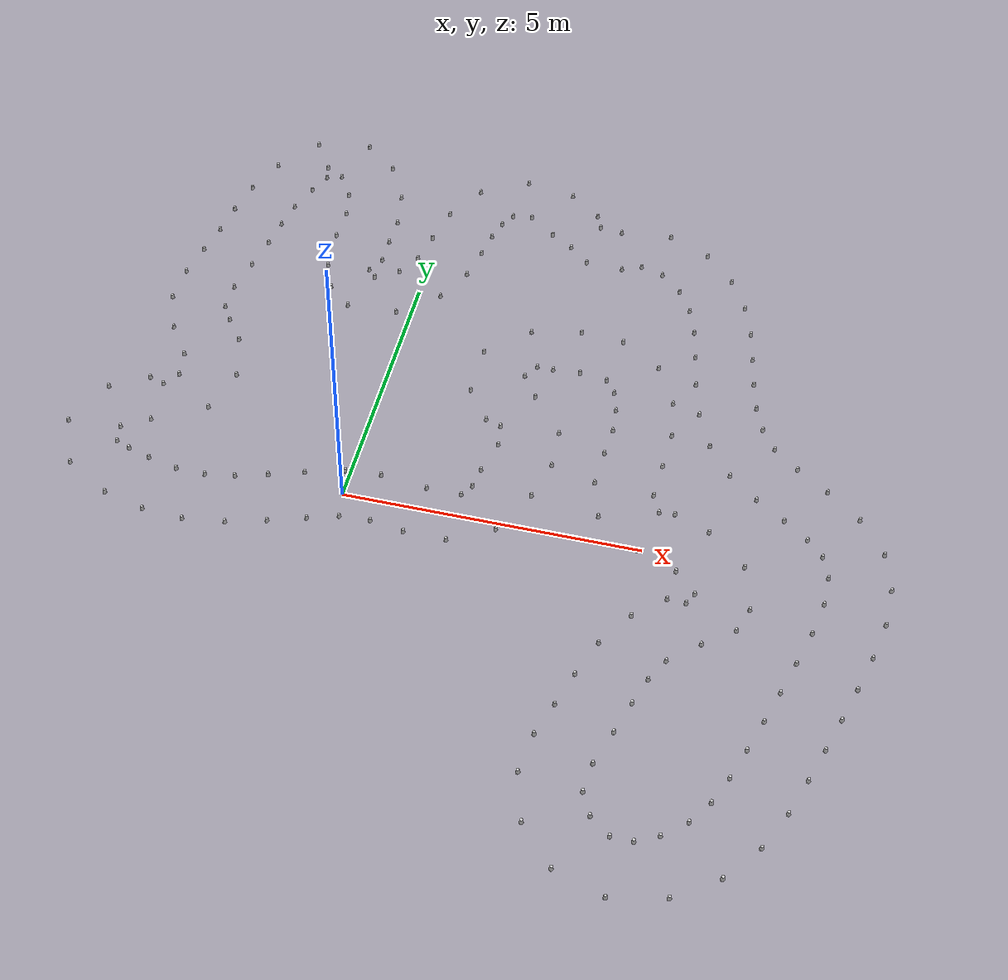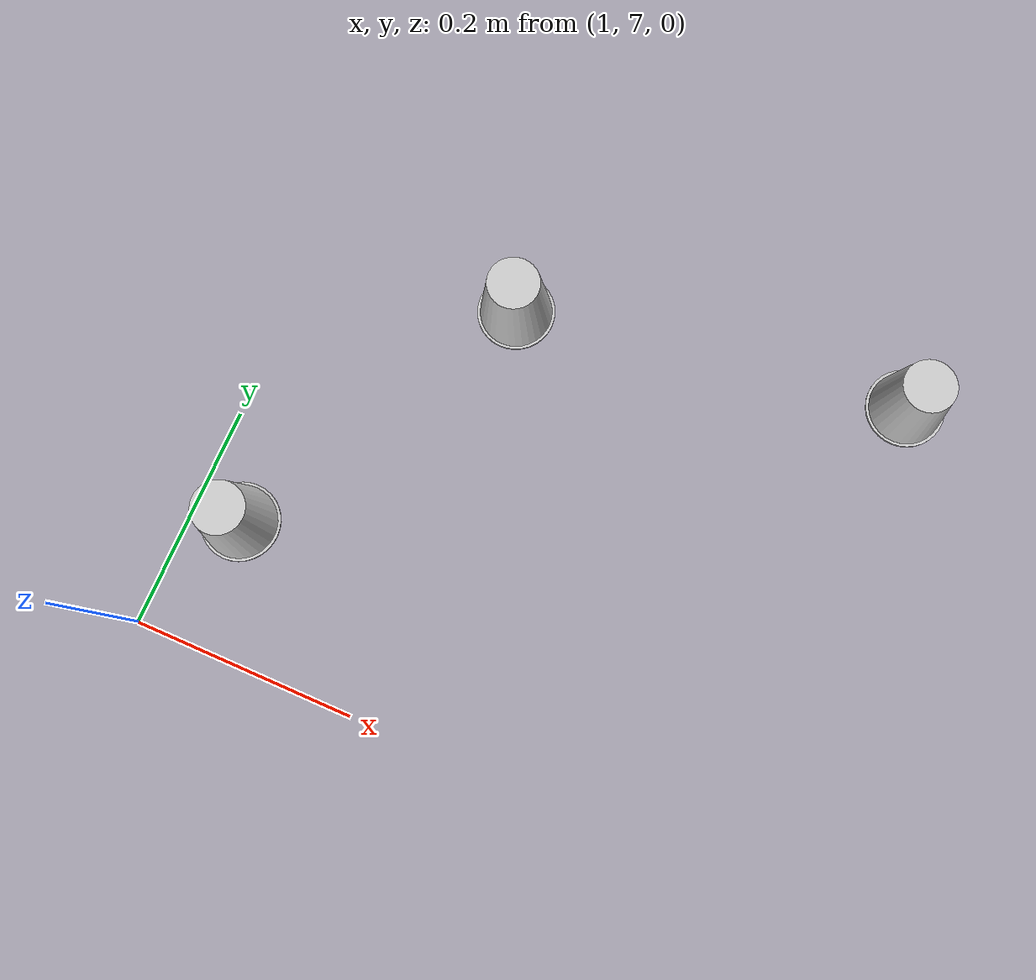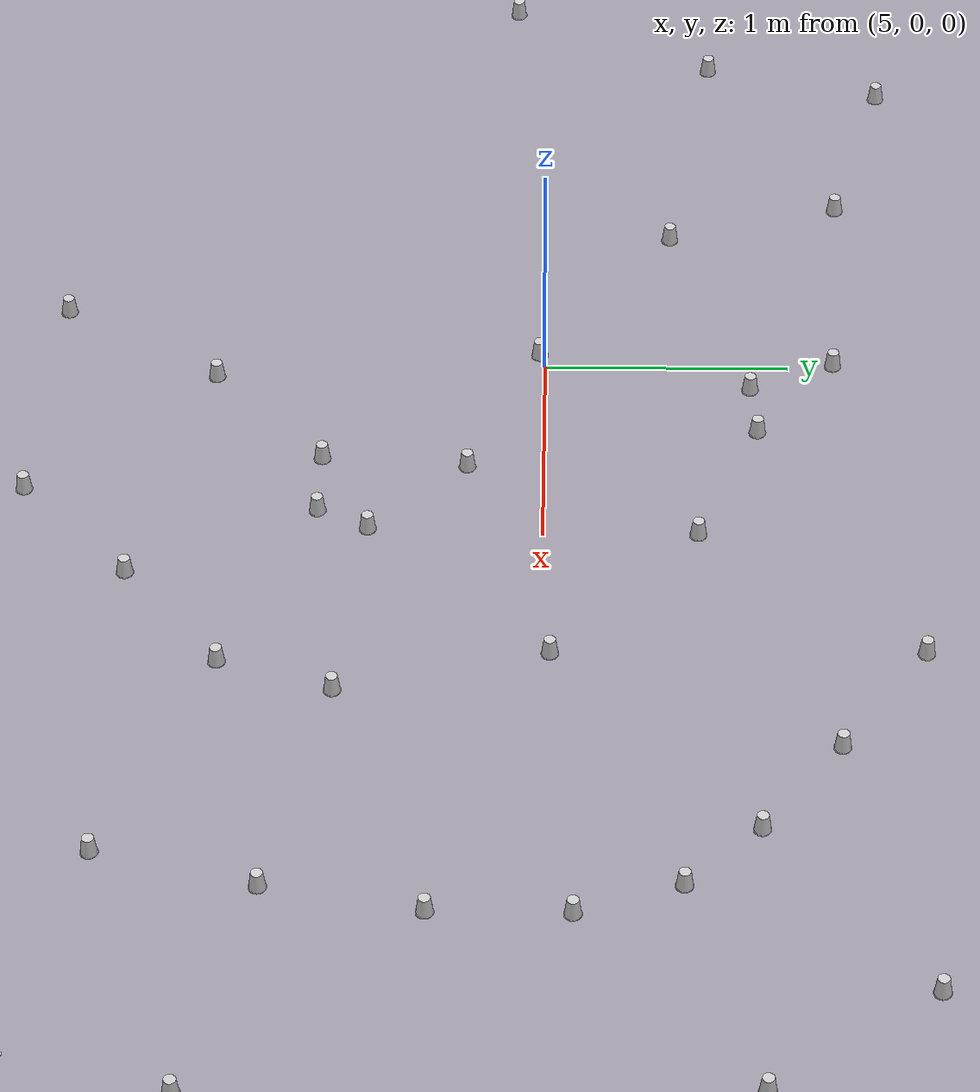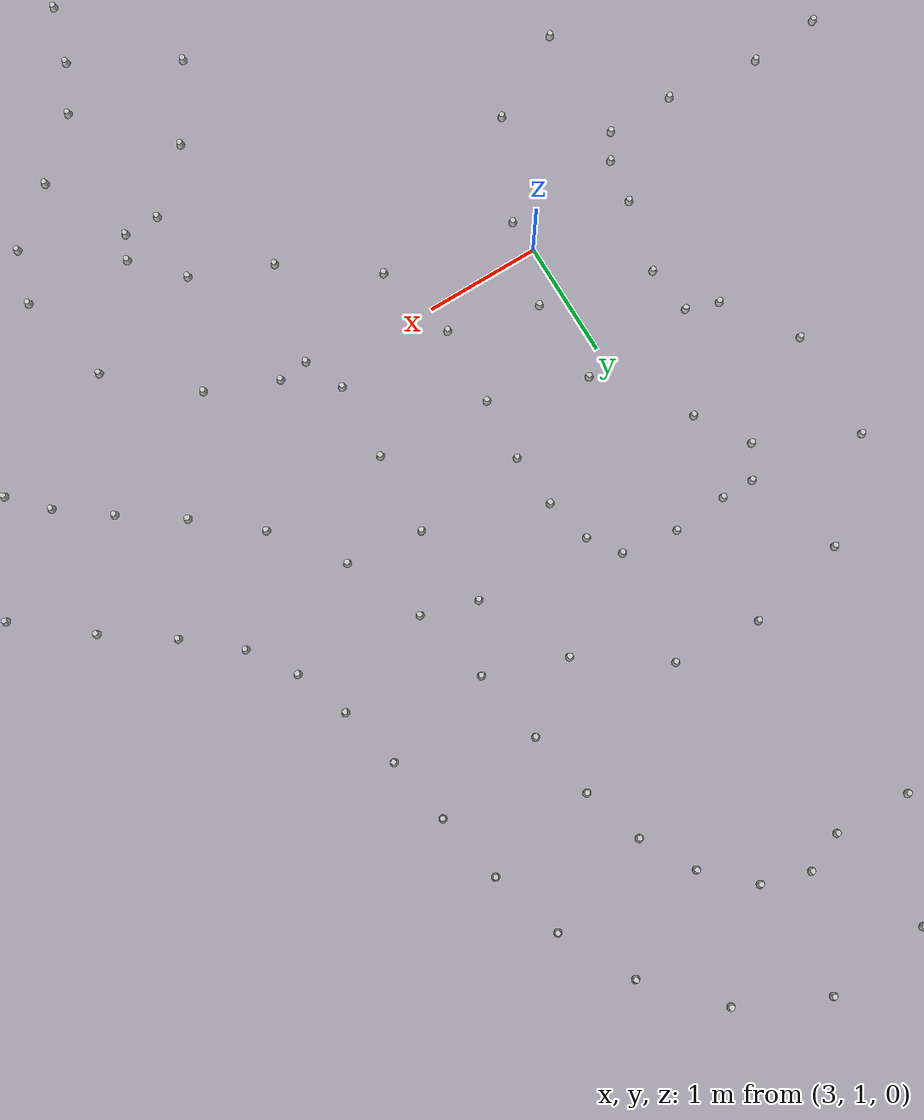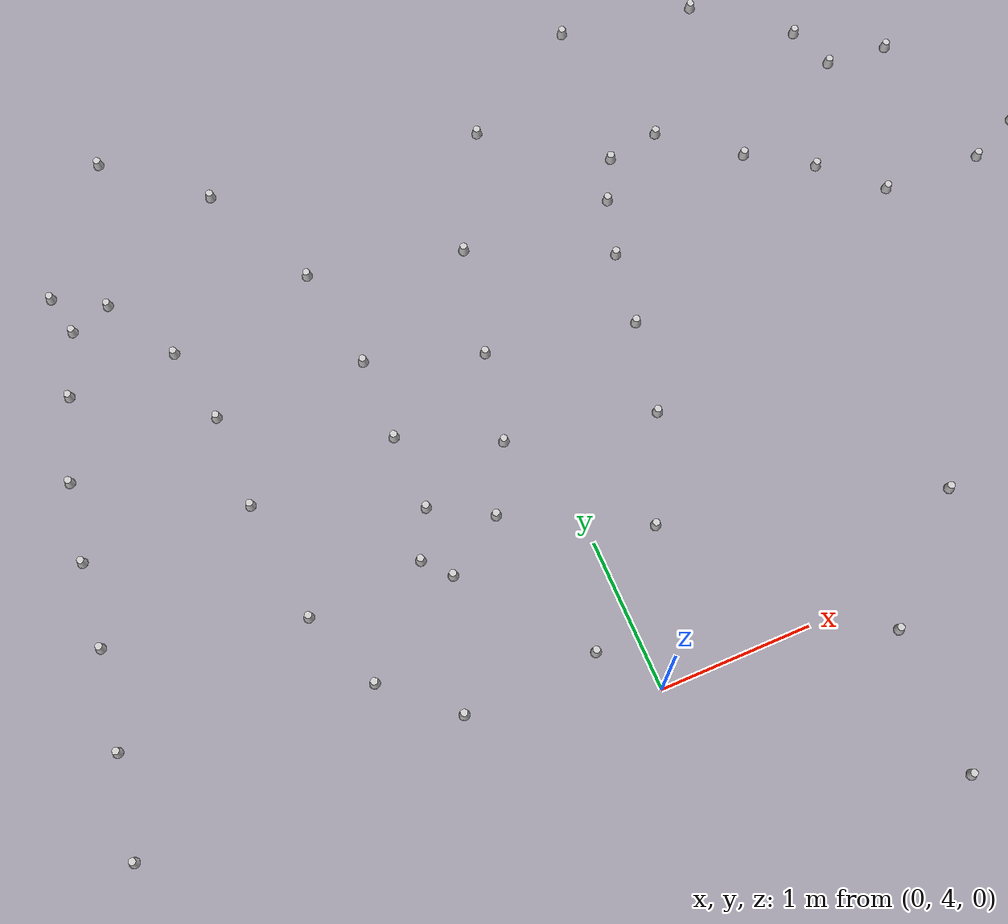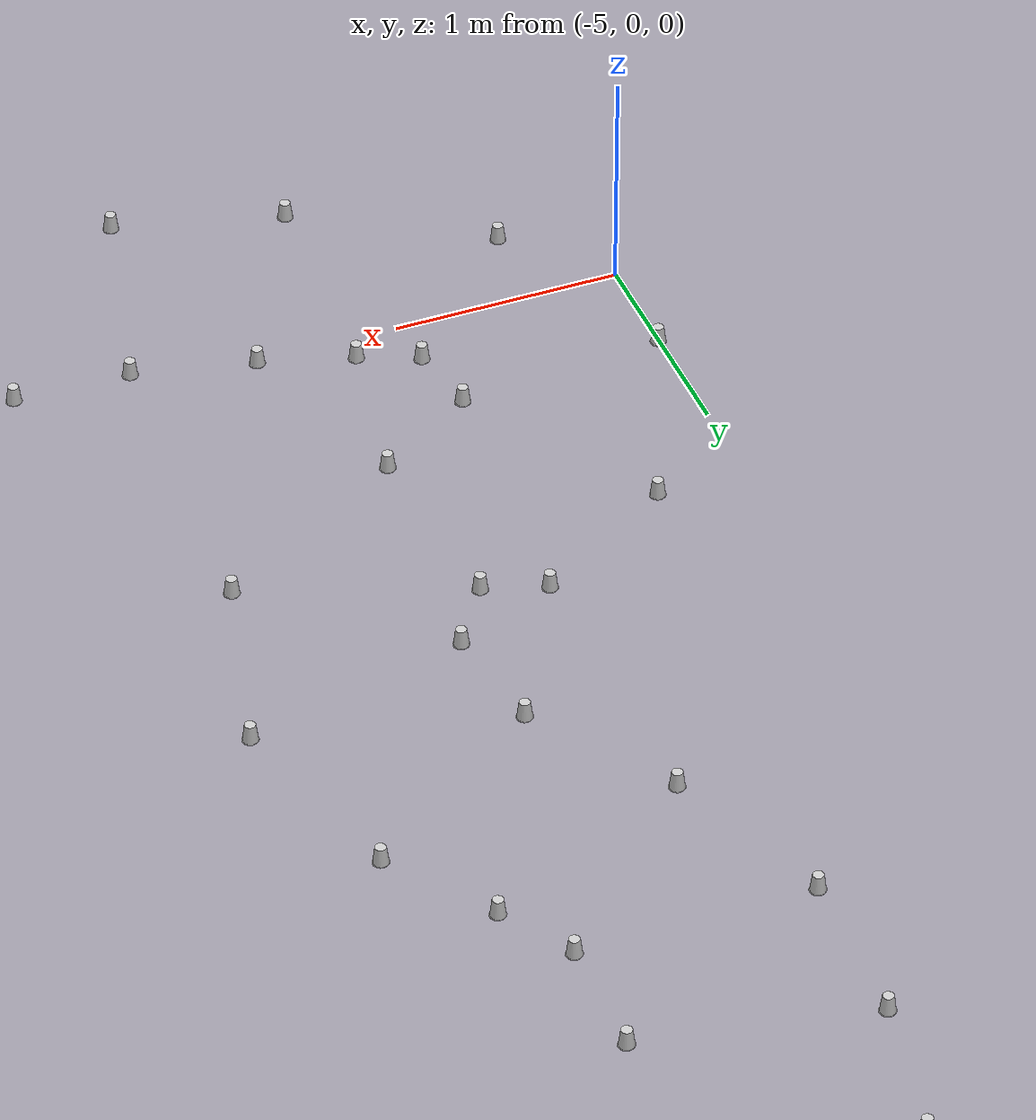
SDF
<?xml version='1.0' encoding='UTF-8'?>
<sdf version="1.4">
  <model name="some track">
    <include>
      <uri>model://cone_yellow</uri>
      <pose>0.5926240286676385 -0.4496644225206605 0 0 0 0</pose>
      <name>cone_right_0</name>
    </include>
    <include>
      <uri>model://cone_yellow</uri>
      <pose>1.1742139536098788 -0.5427977768245701 0 0 0 0</pose>
      <name>cone_right_1</name>
    </include>
    <include>
      <uri>model://cone_yellow</uri>
      <pose>1.8925440433021985 -0.5508184819998573 0 0 0 0</pose>
      <name>cone_right_2</name>
    </include>
    <include>
      <uri>model://cone_yellow</uri>
      <pose>2.621982230147129 -0.14147308389233232 0 0 0 0</pose>
      <name>cone_right_3</name>
    </include>
    <include>
      <uri>model://cone_yellow</uri>
      <pose>3.025602645867592 0.7014848524866597 0 0 0 0</pose>
      <name>cone_right_4</name>
    </include>
    <include>
      <uri>model://cone_yellow</uri>
      <pose>3.209663366661779 1.4351181551910275 0 0 0 0</pose>
      <name>cone_right_5</name>
    </include>
    <include>
      <uri>model://cone_yellow</uri>
      <pose>3.1764131237274524 2.176159549051108 0 0 0 0</pose>
      <name>cone_right_6</name>
    </include>
    <include>
      <uri>model://cone_yellow</uri>
      <pose>2.6049247107749287 2.9078729368130305 0 0 0 0</pose>
      <name>cone_right_7</name>
    </include>
    <include>
      <uri>model://cone_yellow</uri>
      <pose>2.3191245979793416 3.3552197150099548 0 0 0 0</pose>
      <name>cone_right_8</name>
    </include>
    <include>
      <uri>model://cone_yellow</uri>
      <pose>2.4833184282461827 3.6243186827966802 0 0 0 0</pose>
      <name>cone_right_9</name>
    </include>
    <include>
      <uri>model://cone_yellow</uri>
      <pose>2.7652926973428475 3.621423397846722 0 0 0 0</pose>
      <name>cone_right_10</name>
    </include>
    <include>
      <uri>model://cone_yellow</uri>
      <pose>3.2367796323696 3.6574391610812027 0 0 0 0</pose>
      <name>cone_right_11</name>
    </include>
    <include>
      <uri>model://cone_yellow</uri>
      <pose>3.7216663289902607 3.5875163788172473 0 0 0 0</pose>
      <name>cone_right_12</name>
    </include>
    <include>
      <uri>model://cone_yellow</uri>
      <pose>3.908267893891536 3.324950073920827 0 0 0 0</pose>
      <name>cone_right_13</name>
    </include>
    <include>
      <uri>model://cone_yellow</uri>
      <pose>4.01422726666874 2.9243217030171733 0 0 0 0</pose>
      <name>cone_right_14</name>
    </include>
    <include>
      <uri>model://cone_yellow</uri>
      <pose>4.049451164405825 2.4551077566956487 0 0 0 0</pose>
      <name>cone_right_15</name>
    </include>
    <include>
      <uri>model://cone_yellow</uri>
      <pose>4.011646672626873 1.910474725101548 0 0 0 0</pose>
      <name>cone_right_16</name>
    </include>
    <include>
      <uri>model://cone_yellow</uri>
      <pose>3.9823268985117064 1.227601969559943 0 0 0 0</pose>
      <name>cone_right_17</name>
    </include>
    <include>
      <uri>model://cone_yellow</uri>
      <pose>4.185422190930103 0.5213251038594172 0 0 0 0</pose>
      <name>cone_right_18</name>
    </include>
    <include>
      <uri>model://cone_yellow</uri>
      <pose>4.9300219559430545 -0.022289933660858352 0 0 0 0</pose>
      <name>cone_right_19</name>
    </include>
    <include>
      <uri>model://cone_yellow</uri>
      <pose>5.609639765720732 -0.3060220504106689 0 0 0 0</pose>
      <name>cone_right_20</name>
    </include>
    <include>
      <uri>model://cone_yellow</uri>
      <pose>5.975602284648303 -0.6934947396012945 0 0 0 0</pose>
      <name>cone_right_21</name>
    </include>
    <include>
      <uri>model://cone_yellow</uri>
      <pose>5.873674673358433 -0.8973140764588212 0 0 0 0</pose>
      <name>cone_right_22</name>
    </include>
    <include>
      <uri>model://cone_yellow</uri>
      <pose>5.569832798714895 -0.891734108104277 0 0 0 0</pose>
      <name>cone_right_23</name>
    </include>
    <include>
      <uri>model://cone_yellow</uri>
      <pose>5.082426211543387 -1.3467647407133472 0 0 0 0</pose>
      <name>cone_right_24</name>
    </include>
    <include>
      <uri>model://cone_yellow</uri>
      <pose>4.6886741754362955 -1.9881683167215598 0 0 0 0</pose>
      <name>cone_right_25</name>
    </include>
    <include>
      <uri>model://cone_yellow</uri>
      <pose>4.453444475412172 -2.652746987878084 0 0 0 0</pose>
      <name>cone_right_26</name>
    </include>
    <include>
      <uri>model://cone_yellow</uri>
      <pose>4.271136906800132 -3.2735911860420464 0 0 0 0</pose>
      <name>cone_right_27</name>
    </include>
    <include>
      <uri>model://cone_yellow</uri>
      <pose>4.083276239001537 -3.868869079284106 0 0 0 0</pose>
      <name>cone_right_28</name>
    </include>
    <include>
      <uri>model://cone_yellow</uri>
      <pose>3.9968853151914643 -4.572186869420193 0 0 0 0</pose>
      <name>cone_right_29</name>
    </include>
    <include>
      <uri>model://cone_yellow</uri>
      <pose>4.232486991013055 -5.3884951293811545 0 0 0 0</pose>
      <name>cone_right_30</name>
    </include>
    <include>
      <uri>model://cone_yellow</uri>
      <pose>4.810995842386667 -6.031311726222032 0 0 0 0</pose>
      <name>cone_right_31</name>
    </include>
    <include>
      <uri>model://cone_yellow</uri>
      <pose>5.6438158314488955 -6.298380192286762 0 0 0 0</pose>
      <name>cone_right_32</name>
    </include>
    <include>
      <uri>model://cone_yellow</uri>
      <pose>6.516503475589494 -6.096646586173083 0 0 0 0</pose>
      <name>cone_right_33</name>
    </include>
    <include>
      <uri>model://cone_yellow</uri>
      <pose>7.1923332381018925 -5.6146948798992335 0 0 0 0</pose>
      <name>cone_right_34</name>
    </include>
    <include>
      <uri>model://cone_yellow</uri>
      <pose>7.655904713150752 -4.997277309711297 0 0 0 0</pose>
      <name>cone_right_35</name>
    </include>
    <include>
      <uri>model://cone_yellow</uri>
      <pose>7.952323891597003 -4.338363079962488 0 0 0 0</pose>
      <name>cone_right_36</name>
    </include>
    <include>
      <uri>model://cone_yellow</uri>
      <pose>8.159773566467715 -3.7115101008862474 0 0 0 0</pose>
      <name>cone_right_37</name>
    </include>
    <include>
      <uri>model://cone_yellow</uri>
      <pose>8.338978254992796 -3.122865698999707 0 0 0 0</pose>
      <name>cone_right_38</name>
    </include>
    <include>
      <uri>model://cone_yellow</uri>
      <pose>8.509608703077793 -2.530558452051303 0 0 0 0</pose>
      <name>cone_right_39</name>
    </include>
    <include>
      <uri>model://cone_yellow</uri>
      <pose>8.677481224212881 -1.9178279676206345 0 0 0 0</pose>
      <name>cone_right_40</name>
    </include>
    <include>
      <uri>model://cone_yellow</uri>
      <pose>8.843436142594843 -1.2712515679855898 0 0 0 0</pose>
      <name>cone_right_41</name>
    </include>
    <include>
      <uri>model://cone_yellow</uri>
      <pose>8.9701087025158 -0.5876858298561805 0 0 0 0</pose>
      <name>cone_right_42</name>
    </include>
    <include>
      <uri>model://cone_yellow</uri>
      <pose>8.988571988894483 0.11657539057124149 0 0 0 0</pose>
      <name>cone_right_43</name>
    </include>
    <include>
      <uri>model://cone_yellow</uri>
      <pose>8.805590077495555 0.8221350772742814 0 0 0 0</pose>
      <name>cone_right_44</name>
    </include>
    <include>
      <uri>model://cone_yellow</uri>
      <pose>8.342622471358137 1.459353696476083 0 0 0 0</pose>
      <name>cone_right_45</name>
    </include>
    <include>
      <uri>model://cone_yellow</uri>
      <pose>7.758009836726797 1.9338725175860367 0 0 0 0</pose>
      <name>cone_right_46</name>
    </include>
    <include>
      <uri>model://cone_yellow</uri>
      <pose>7.2073115639049075 2.313196113411687 0 0 0 0</pose>
      <name>cone_right_47</name>
    </include>
    <include>
      <uri>model://cone_yellow</uri>
      <pose>6.7782843593962365 2.67530117761143 0 0 0 0</pose>
      <name>cone_right_48</name>
    </include>
    <include>
      <uri>model://cone_yellow</uri>
      <pose>6.51725434777347 3.069160972971799 0 0 0 0</pose>
      <name>cone_right_49</name>
    </include>
    <include>
      <uri>model://cone_yellow</uri>
      <pose>6.342785515885337 3.5410416892903047 0 0 0 0</pose>
      <name>cone_right_50</name>
    </include>
    <include>
      <uri>model://cone_yellow</uri>
      <pose>6.212617466763378 4.093869825266669 0 0 0 0</pose>
      <name>cone_right_51</name>
    </include>
    <include>
      <uri>model://cone_yellow</uri>
      <pose>6.107851373185473 4.687389482358288 0 0 0 0</pose>
      <name>cone_right_52</name>
    </include>
    <include>
      <uri>model://cone_yellow</uri>
      <pose>5.985255542184531 5.306769562227877 0 0 0 0</pose>
      <name>cone_right_53</name>
    </include>
    <include>
      <uri>model://cone_yellow</uri>
      <pose>5.787892635115244 5.942779217780199 0 0 0 0</pose>
      <name>cone_right_54</name>
    </include>
    <include>
      <uri>model://cone_yellow</uri>
      <pose>5.448540965672963 6.577457392597124 0 0 0 0</pose>
      <name>cone_right_55</name>
    </include>
    <include>
      <uri>model://cone_yellow</uri>
      <pose>4.91262792865898 7.15415810240139 0 0 0 0</pose>
      <name>cone_right_56</name>
    </include>
    <include>
      <uri>model://cone_yellow</uri>
      <pose>4.168831951117055 7.506775254272088 0 0 0 0</pose>
      <name>cone_right_57</name>
    </include>
    <include>
      <uri>model://cone_yellow</uri>
      <pose>3.257854512022687 7.415196068914482 0 0 0 0</pose>
      <name>cone_right_58</name>
    </include>
    <include>
      <uri>model://cone_yellow</uri>
      <pose>2.848028742278011 7.457584233564593 0 0 0 0</pose>
      <name>cone_right_59</name>
    </include>
    <include>
      <uri>model://cone_yellow</uri>
      <pose>2.7333074841598743 7.758220329443013 0 0 0 0</pose>
      <name>cone_right_60</name>
    </include>
    <include>
      <uri>model://cone_yellow</uri>
      <pose>2.163430488230667 8.218145151686327 0 0 0 0</pose>
      <name>cone_right_61</name>
    </include>
    <include>
      <uri>model://cone_yellow</uri>
      <pose>1.2725276612249197 8.37906739706495 0 0 0 0</pose>
      <name>cone_right_62</name>
    </include>
    <include>
      <uri>model://cone_yellow</uri>
      <pose>0.44026859662325746 7.911447135812434 0 0 0 0</pose>
      <name>cone_right_63</name>
    </include>
    <include>
      <uri>model://cone_yellow</uri>
      <pose>0.025568352249274673 7.158063629582086 0 0 0 0</pose>
      <name>cone_right_64</name>
    </include>
    <include>
      <uri>model://cone_yellow</uri>
      <pose>-0.1288647231304486 6.435672528760919 0 0 0 0</pose>
      <name>cone_right_65</name>
    </include>
    <include>
      <uri>model://cone_yellow</uri>
      <pose>-0.2549660988100891 5.838572945383033 0 0 0 0</pose>
      <name>cone_right_66</name>
    </include>
    <include>
      <uri>model://cone_yellow</uri>
      <pose>-0.49247083079778997 5.408630319975282 0 0 0 0</pose>
      <name>cone_right_67</name>
    </include>
    <include>
      <uri>model://cone_yellow</uri>
      <pose>-0.8894368720874655 5.157979234895482 0 0 0 0</pose>
      <name>cone_right_68</name>
    </include>
    <include>
      <uri>model://cone_yellow</uri>
      <pose>-1.038061143772976 5.3255489095402995 0 0 0 0</pose>
      <name>cone_right_69</name>
    </include>
    <include>
      <uri>model://cone_yellow</uri>
      <pose>-0.8761949920071117 5.629144206848843 0 0 0 0</pose>
      <name>cone_right_70</name>
    </include>
    <include>
      <uri>model://cone_yellow</uri>
      <pose>-0.8848568909940436 6.140193762231009 0 0 0 0</pose>
      <name>cone_right_71</name>
    </include>
    <include>
      <uri>model://cone_yellow</uri>
      <pose>-0.8740308544750517 6.692349803740463 0 0 0 0</pose>
      <name>cone_right_72</name>
    </include>
    <include>
      <uri>model://cone_yellow</uri>
      <pose>-0.9865156868503095 7.395680946636413 0 0 0 0</pose>
      <name>cone_right_73</name>
    </include>
    <include>
      <uri>model://cone_yellow</uri>
      <pose>-1.3688440059523004 8.17624231659473 0 0 0 0</pose>
      <name>cone_right_74</name>
    </include>
    <include>
      <uri>model://cone_yellow</uri>
      <pose>-1.9737362222657047 8.695579620017877 0 0 0 0</pose>
      <name>cone_right_75</name>
    </include>
    <include>
      <uri>model://cone_yellow</uri>
      <pose>-2.953929525343332 8.529521124077906 0 0 0 0</pose>
      <name>cone_right_76</name>
    </include>
    <include>
      <uri>model://cone_yellow</uri>
      <pose>-3.5389007654043616 7.741510338627647 0 0 0 0</pose>
      <name>cone_right_77</name>
    </include>
    <include>
      <uri>model://cone_yellow</uri>
      <pose>-3.816207857613418 7.006306770506495 0 0 0 0</pose>
      <name>cone_right_78</name>
    </include>
    <include>
      <uri>model://cone_yellow</uri>
      <pose>-3.954686946718662 6.340619207608372 0 0 0 0</pose>
      <name>cone_right_79</name>
    </include>
    <include>
      <uri>model://cone_yellow</uri>
      <pose>-4.039722539668558 5.7236343874897315 0 0 0 0</pose>
      <name>cone_right_80</name>
    </include>
    <include>
      <uri>model://cone_yellow</uri>
      <pose>-4.149355277572595 5.127473580053615 0 0 0 0</pose>
      <name>cone_right_81</name>
    </include>
    <include>
      <uri>model://cone_yellow</uri>
      <pose>-4.274423898647589 4.4889016552255425 0 0 0 0</pose>
      <name>cone_right_82</name>
    </include>
    <include>
      <uri>model://cone_yellow</uri>
      <pose>-4.2920744478689254 3.7890751750333456 0 0 0 0</pose>
      <name>cone_right_83</name>
    </include>
    <include>
      <uri>model://cone_yellow</uri>
      <pose>-4.012419427273055 3.056052473731364 0 0 0 0</pose>
      <name>cone_right_84</name>
    </include>
    <include>
      <uri>model://cone_yellow</uri>
      <pose>-3.608962209834163 2.4612220995014553 0 0 0 0</pose>
      <name>cone_right_85</name>
    </include>
    <include>
      <uri>model://cone_yellow</uri>
      <pose>-3.5323989559630324 1.966525755428469 0 0 0 0</pose>
      <name>cone_right_86</name>
    </include>
    <include>
      <uri>model://cone_yellow</uri>
      <pose>-3.7219395392399095 1.6868194550546387 0 0 0 0</pose>
      <name>cone_right_87</name>
    </include>
    <include>
      <uri>model://cone_yellow</uri>
      <pose>-3.988937196147224 1.7765033941357187 0 0 0 0</pose>
      <name>cone_right_88</name>
    </include>
    <include>
      <uri>model://cone_yellow</uri>
      <pose>-4.613894258859372 1.400461778271594 0 0 0 0</pose>
      <name>cone_right_89</name>
    </include>
    <include>
      <uri>model://cone_yellow</uri>
      <pose>-4.995886600944408 0.47890372462951136 0 0 0 0</pose>
      <name>cone_right_90</name>
    </include>
    <include>
      <uri>model://cone_yellow</uri>
      <pose>-4.620396712499105 -0.4125756290382736 0 0 0 0</pose>
      <name>cone_right_91</name>
    </include>
    <include>
      <uri>model://cone_yellow</uri>
      <pose>-3.8256826218725304 -0.8928227698400282 0 0 0 0</pose>
      <name>cone_right_92</name>
    </include>
    <include>
      <uri>model://cone_yellow</uri>
      <pose>-3.1013015315406216 -1.0893334316105001 0 0 0 0</pose>
      <name>cone_right_93</name>
    </include>
    <include>
      <uri>model://cone_yellow</uri>
      <pose>-2.3993373413608214 -1.134670515380645 0 0 0 0</pose>
      <name>cone_right_94</name>
    </include>
    <include>
      <uri>model://cone_yellow</uri>
      <pose>-1.6998606974034003 -1.0372482435559367 0 0 0 0</pose>
      <name>cone_right_95</name>
    </include>
    <include>
      <uri>model://cone_yellow</uri>
      <pose>-1.0393641356502785 -0.8479018840486419 0 0 0 0</pose>
      <name>cone_right_96</name>
    </include>
    <include>
      <uri>model://cone_yellow</uri>
      <pose>-0.42769522994100817 -0.6416128295186374 0 0 0 0</pose>
      <name>cone_right_97</name>
    </include>
    <include>
      <uri>model://cone_yellow</uri>
      <pose>0.07523493147859028 -0.48153602104993354 0 0 0 0</pose>
      <name>cone_right_98</name>
    </include>
    <include>
      <uri>model://cone_blue</uri>
      <pose>0.5047521691076726 0.5464673640906661 0 0 0 0</pose>
      <name>cone_left_0</name>
    </include>
    <include>
      <uri>model://cone_blue</uri>
      <pose>1.3111118919254319 0.4477873807893279 0 0 0 0</pose>
      <name>cone_left_1</name>
    </include>
    <include>
      <uri>model://cone_blue</uri>
      <pose>1.8976323099558587 0.4491685726875828 0 0 0 0</pose>
      <name>cone_left_2</name>
    </include>
    <include>
      <uri>model://cone_blue</uri>
      <pose>2.0350946812627466 0.6681953698370207 0 0 0 0</pose>
      <name>cone_left_3</name>
    </include>
    <include>
      <uri>model://cone_blue</uri>
      <pose>2.088655890659815 1.0509569943028816 0 0 0 0</pose>
      <name>cone_left_4</name>
    </include>
    <include>
      <uri>model://cone_blue</uri>
      <pose>2.2386598585117534 1.6741833913930801 0 0 0 0</pose>
      <name>cone_left_5</name>
    </include>
    <include>
      <uri>model://cone_blue</uri>
      <pose>2.17954700538655 2.0970523932183838 0 0 0 0</pose>
      <name>cone_left_6</name>
    </include>
    <include>
      <uri>model://cone_blue</uri>
      <pose>1.9053398211729058 2.193323440808362 0 0 0 0</pose>
      <name>cone_left_7</name>
    </include>
    <include>
      <uri>model://cone_blue</uri>
      <pose>1.4874520828144282 2.7999532676900514 0 0 0 0</pose>
      <name>cone_left_8</name>
    </include>
    <include>
      <uri>model://cone_blue</uri>
      <pose>1.4926722242813686 3.760774164804932 0 0 0 0</pose>
      <name>cone_left_9</name>
    </include>
    <include>
      <uri>model://cone_blue</uri>
      <pose>2.197349257371956 4.444490982552881 0 0 0 0</pose>
      <name>cone_left_10</name>
    </include>
    <include>
      <uri>model://cone_blue</uri>
      <pose>3.0645774930551455 4.642500795302902 0 0 0 0</pose>
      <name>cone_left_11</name>
    </include>
    <include>
      <uri>model://cone_blue</uri>
      <pose>3.8256994388163603 4.582090213210607 0 0 0 0</pose>
      <name>cone_left_12</name>
    </include>
    <include>
      <uri>model://cone_blue</uri>
      <pose>4.545284538835137 4.095800120340232 0 0 0 0</pose>
      <name>cone_left_13</name>
    </include>
    <include>
      <uri>model://cone_blue</uri>
      <pose>4.9364212054654555 3.311049435726636 0 0 0 0</pose>
      <name>cone_left_14</name>
    </include>
    <include>
      <uri>model://cone_blue</uri>
      <pose>5.042673119311184 2.5713409201817172 0 0 0 0</pose>
      <name>cone_left_15</name>
    </include>
    <include>
      <uri>model://cone_blue</uri>
      <pose>5.010093105665535 1.8547547075820665 0 0 0 0</pose>
      <name>cone_left_16</name>
    </include>
    <include>
      <uri>model://cone_blue</uri>
      <pose>4.981409033262212 1.184766376621667 0 0 0 0</pose>
      <name>cone_left_17</name>
    </include>
    <include>
      <uri>model://cone_blue</uri>
      <pose>5.132847144087052 0.8413031626940094 0 0 0 0</pose>
      <name>cone_left_18</name>
    </include>
    <include>
      <uri>model://cone_blue</uri>
      <pose>5.390234710733218 0.8655187283426438 0 0 0 0</pose>
      <name>cone_left_19</name>
    </include>
    <include>
      <uri>model://cone_blue</uri>
      <pose>5.992626565200983 0.6177317649664981 0 0 0 0</pose>
      <name>cone_left_20</name>
    </include>
    <include>
      <uri>model://cone_blue</uri>
      <pose>6.659858036780512 0.035747377719136664 0 0 0 0</pose>
      <name>cone_left_21</name>
    </include>
    <include>
      <uri>model://cone_blue</uri>
      <pose>6.868404087036007 -0.7947792357232388 0 0 0 0</pose>
      <name>cone_left_22</name>
    </include>
    <include>
      <uri>model://cone_blue</uri>
      <pose>6.236399348606454 -1.6371796356686068 0 0 0 0</pose>
      <name>cone_left_23</name>
    </include>
    <include>
      <uri>model://cone_blue</uri>
      <pose>5.764967217045308 -2.0776120406388685 0 0 0 0</pose>
      <name>cone_left_24</name>
    </include>
    <include>
      <uri>model://cone_blue</uri>
      <pose>5.55588685814992 -2.4861062274500343 0 0 0 0</pose>
      <name>cone_left_25</name>
    </include>
    <include>
      <uri>model://cone_blue</uri>
      <pose>5.400507848419708 -2.97379366284543 0 0 0 0</pose>
      <name>cone_left_26</name>
    </include>
    <include>
      <uri>model://cone_blue</uri>
      <pose>5.230816005721868 -3.554689081965803 0 0 0 0</pose>
      <name>cone_left_27</name>
    </include>
    <include>
      <uri>model://cone_blue</uri>
      <pose>5.036965989448745 -4.169661133520824 0 0 0 0</pose>
      <name>cone_left_28</name>
    </include>
    <include>
      <uri>model://cone_blue</uri>
      <pose>4.990996199372505 -4.680554530430241 0 0 0 0</pose>
      <name>cone_left_29</name>
    </include>
    <include>
      <uri>model://cone_blue</uri>
      <pose>5.175581968386841 -5.0559716510336274 0 0 0 0</pose>
      <name>cone_left_30</name>
    </include>
    <include>
      <uri>model://cone_blue</uri>
      <pose>5.514232296184085 -5.320355686757965 0 0 0 0</pose>
      <name>cone_left_31</name>
    </include>
    <include>
      <uri>model://cone_blue</uri>
      <pose>5.8661128955254505 -5.323401210306667 0 0 0 0</pose>
      <name>cone_left_32</name>
    </include>
    <include>
      <uri>model://cone_blue</uri>
      <pose>6.21807428203332 -5.142214809442336 0 0 0 0</pose>
      <name>cone_left_33</name>
    </include>
    <include>
      <uri>model://cone_blue</uri>
      <pose>6.5817593105280965 -4.822735613922057 0 0 0 0</pose>
      <name>cone_left_34</name>
    </include>
    <include>
      <uri>model://cone_blue</uri>
      <pose>6.839337002959384 -4.420027645637921 0 0 0 0</pose>
      <name>cone_left_35</name>
    </include>
    <include>
      <uri>model://cone_blue</uri>
      <pose>7.034367352579388 -3.9416821093137804 0 0 0 0</pose>
      <name>cone_left_36</name>
    </include>
    <include>
      <uri>model://cone_blue</uri>
      <pose>7.2094205191617675 -3.400336378544047 0 0 0 0</pose>
      <name>cone_left_37</name>
    </include>
    <include>
      <uri>model://cone_blue</uri>
      <pose>7.3822753403375865 -2.8317994984709856 0 0 0 0</pose>
      <name>cone_left_38</name>
    </include>
    <include>
      <uri>model://cone_blue</uri>
      <pose>7.548661839099905 -2.253825503866481 0 0 0 0</pose>
      <name>cone_left_39</name>
    </include>
    <include>
      <uri>model://cone_blue</uri>
      <pose>7.713005703393521 -1.653655732629477 0 0 0 0</pose>
      <name>cone_left_40</name>
    </include>
    <include>
      <uri>model://cone_blue</uri>
      <pose>7.87480773934383 -1.0227379538406212 0 0 0 0</pose>
      <name>cone_left_41</name>
    </include>
    <include>
      <uri>model://cone_blue</uri>
      <pose>7.986532633692425 -0.407191738989035 0 0 0 0</pose>
      <name>cone_left_42</name>
    </include>
    <include>
      <uri>model://cone_blue</uri>
      <pose>7.9887094685952444 0.13315672045923183 0 0 0 0</pose>
      <name>cone_left_43</name>
    </include>
    <include>
      <uri>model://cone_blue</uri>
      <pose>7.8458283962128945 0.5413192744043592 0 0 0 0</pose>
      <name>cone_left_44</name>
    </include>
    <include>
      <uri>model://cone_blue</uri>
      <pose>7.562816716897757 0.8333321430847651 0 0 0 0</pose>
      <name>cone_left_45</name>
    </include>
    <include>
      <uri>model://cone_blue</uri>
      <pose>7.141476895021921 1.146543404830302 0 0 0 0</pose>
      <name>cone_left_46</name>
    </include>
    <include>
      <uri>model://cone_blue</uri>
      <pose>6.641261014161778 1.4888255807411532 0 0 0 0</pose>
      <name>cone_left_47</name>
    </include>
    <include>
      <uri>model://cone_blue</uri>
      <pose>6.13638665790554 1.9085108928392773 0 0 0 0</pose>
      <name>cone_left_48</name>
    </include>
    <include>
      <uri>model://cone_blue</uri>
      <pose>5.703007669430681 2.4886419407189915 0 0 0 0</pose>
      <name>cone_left_49</name>
    </include>
    <include>
      <uri>model://cone_blue</uri>
      <pose>5.414868555149457 3.1682547340750133 0 0 0 0</pose>
      <name>cone_left_50</name>
    </include>
    <include>
      <uri>model://cone_blue</uri>
      <pose>5.241302482419599 3.856073271066988 0 0 0 0</pose>
      <name>cone_left_51</name>
    </include>
    <include>
      <uri>model://cone_blue</uri>
      <pose>5.123369426806524 4.511903593313283 0 0 0 0</pose>
      <name>cone_left_52</name>
    </include>
    <include>
      <uri>model://cone_blue</uri>
      <pose>5.004315104752118 5.112460894871249 0 0 0 0</pose>
      <name>cone_left_53</name>
    </include>
    <include>
      <uri>model://cone_blue</uri>
      <pose>4.834171710902287 5.6420860207863495 0 0 0 0</pose>
      <name>cone_left_54</name>
    </include>
    <include>
      <uri>model://cone_blue</uri>
      <pose>4.573253460538366 6.093854473504143 0 0 0 0</pose>
      <name>cone_left_55</name>
    </include>
    <include>
      <uri>model://cone_blue</uri>
      <pose>4.195524958359648 6.457190865016535 0 0 0 0</pose>
      <name>cone_left_56</name>
    </include>
    <include>
      <uri>model://cone_blue</uri>
      <pose>3.785695804470727 6.583083372131186 0 0 0 0</pose>
      <name>cone_left_57</name>
    </include>
    <include>
      <uri>model://cone_blue</uri>
      <pose>3.4475306713256404 6.433349362655261 0 0 0 0</pose>
      <name>cone_left_58</name>
    </include>
    <include>
      <uri>model://cone_blue</uri>
      <pose>2.784177790977494 6.459624787485736 0 0 0 0</pose>
      <name>cone_left_59</name>
    </include>
    <include>
      <uri>model://cone_blue</uri>
      <pose>2.0184940924232664 7.058905082223273 0 0 0 0</pose>
      <name>cone_left_60</name>
    </include>
    <include>
      <uri>model://cone_blue</uri>
      <pose>1.539376982326372 7.436763540840155 0 0 0 0</pose>
      <name>cone_left_61</name>
    </include>
    <include>
      <uri>model://cone_blue</uri>
      <pose>1.1868692061395933 7.382742836957957 0 0 0 0</pose>
      <name>cone_left_62</name>
    </include>
    <include>
      <uri>model://cone_blue</uri>
      <pose>1.0427586292553706 7.113320729421218 0 0 0 0</pose>
      <name>cone_left_63</name>
    </include>
    <include>
      <uri>model://cone_blue</uri>
      <pose>0.9324687983075898 6.736718662910798 0 0 0 0</pose>
      <name>cone_left_64</name>
    </include>
    <include>
      <uri>model://cone_blue</uri>
      <pose>0.8530472159603296 6.246334355454564 0 0 0 0</pose>
      <name>cone_left_65</name>
    </include>
    <include>
      <uri>model://cone_blue</uri>
      <pose>0.7234785787725426 5.632063834421265 0 0 0 0</pose>
      <name>cone_left_66</name>
    </include>
    <include>
      <uri>model://cone_blue</uri>
      <pose>0.39911624429758763 4.955781021065734 0 0 0 0</pose>
      <name>cone_left_67</name>
    </include>
    <include>
      <uri>model://cone_blue</uri>
      <pose>-0.27350141770786873 4.370182613908694 0 0 0 0</pose>
      <name>cone_left_68</name>
    </include>
    <include>
      <uri>model://cone_blue</uri>
      <pose>-1.1630426481880098 4.333389837841534 0 0 0 0</pose>
      <name>cone_left_69</name>
    </include>
    <include>
      <uri>model://cone_blue</uri>
      <pose>-1.8076199673071762 5.265210812685468 0 0 0 0</pose>
      <name>cone_left_70</name>
    </include>
    <include>
      <uri>model://cone_blue</uri>
      <pose>-1.882851618710879 6.076896657641621 0 0 0 0</pose>
      <name>cone_left_71</name>
    </include>
    <include>
      <uri>model://cone_blue</uri>
      <pose>-1.87389132173368 6.709054474146004 0 0 0 0</pose>
      <name>cone_left_72</name>
    </include>
    <include>
      <uri>model://cone_blue</uri>
      <pose>-1.971946609210727 7.225604795292679 0 0 0 0</pose>
      <name>cone_left_73</name>
    </include>
    <include>
      <uri>model://cone_blue</uri>
      <pose>-2.254304632440525 7.711527910815136 0 0 0 0</pose>
      <name>cone_left_74</name>
    </include>
    <include>
      <uri>model://cone_blue</uri>
      <pose>-2.5792954930540977 7.899779412954427 0 0 0 0</pose>
      <name>cone_left_75</name>
    </include>
    <include>
      <uri>model://cone_blue</uri>
      <pose>-2.5249895065845136 7.626188150968221 0 0 0 0</pose>
      <name>cone_left_76</name>
    </include>
    <include>
      <uri>model://cone_blue</uri>
      <pose>-2.6906503469080456 7.211914995444925 0 0 0 0</pose>
      <name>cone_left_77</name>
    </include>
    <include>
      <uri>model://cone_blue</uri>
      <pose>-2.8756360595387296 6.66671187557056 0 0 0 0</pose>
      <name>cone_left_78</name>
    </include>
    <include>
      <uri>model://cone_blue</uri>
      <pose>-2.974006362027668 6.145003280828034 0 0 0 0</pose>
      <name>cone_left_79</name>
    </include>
    <include>
      <uri>model://cone_blue</uri>
      <pose>-3.04888145334024 5.588601274351811 0 0 0 0</pose>
      <name>cone_left_80</name>
    </include>
    <include>
      <uri>model://cone_blue</uri>
      <pose>-3.165692887658595 4.947450518562376 0 0 0 0</pose>
      <name>cone_left_81</name>
    </include>
    <include>
      <uri>model://cone_blue</uri>
      <pose>-3.2930578507487716 4.2967541076704 0 0 0 0</pose>
      <name>cone_left_82</name>
    </include>
    <include>
      <uri>model://cone_blue</uri>
      <pose>-3.292168621827905 3.7753515075488844 0 0 0 0</pose>
      <name>cone_left_83</name>
    </include>
    <include>
      <uri>model://cone_blue</uri>
      <pose>-3.101300433242843 3.468195869550557 0 0 0 0</pose>
      <name>cone_left_84</name>
    </include>
    <include>
      <uri>model://cone_blue</uri>
      <pose>-2.7879317067593585 3.032106424930639 0 0 0 0</pose>
      <name>cone_left_85</name>
    </include>
    <include>
      <uri>model://cone_blue</uri>
      <pose>-2.55773895530981 2.1902172463856813 0 0 0 0</pose>
      <name>cone_left_86</name>
    </include>
    <include>
      <uri>model://cone_blue</uri>
      <pose>-2.7834672541056458 1.3414648980630246 0 0 0 0</pose>
      <name>cone_left_87</name>
    </include>
    <include>
      <uri>model://cone_blue</uri>
      <pose>-3.6443335384308075 0.8377551216534379 0 0 0 0</pose>
      <name>cone_left_88</name>
    </include>
    <include>
      <uri>model://cone_blue</uri>
      <pose>-4.086184838782981 0.5510368151567586 0 0 0 0</pose>
      <name>cone_left_89</name>
    </include>
    <include>
      <uri>model://cone_blue</uri>
      <pose>-4.028080580517019 0.22720647231137178 0 0 0 0</pose>
      <name>cone_left_90</name>
    </include>
    <include>
      <uri>model://cone_blue</uri>
      <pose>-3.774452115582396 0.12069516422479787 0 0 0 0</pose>
      <name>cone_left_91</name>
    </include>
    <include>
      <uri>model://cone_blue</uri>
      <pose>-3.3760789008721592 0.00040536118956513434 0 0 0 0</pose>
      <name>cone_left_92</name>
    </include>
    <include>
      <uri>model://cone_blue</uri>
      <pose>-2.8546003741614694 -0.12024182657628707 0 0 0 0</pose>
      <name>cone_left_93</name>
    </include>
    <include>
      <uri>model://cone_blue</uri>
      <pose>-2.348859143995086 -0.1359453521897369 0 0 0 0</pose>
      <name>cone_left_94</name>
    </include>
    <include>
      <uri>model://cone_blue</uri>
      <pose>-1.852262322419649 -0.0489295982332823 0 0 0 0</pose>
      <name>cone_left_95</name>
    </include>
    <include>
      <uri>model://cone_blue</uri>
      <pose>-1.3210696046395989 0.11159904286154454 0 0 0 0</pose>
      <name>cone_left_96</name>
    </include>
    <include>
      <uri>model://cone_blue</uri>
      <pose>-0.7478632863265888 0.305747933691598 0 0 0 0</pose>
      <name>cone_left_97</name>
    </include>
    <include>
      <uri>model://cone_blue</uri>
      <pose>-0.10471075504020888 0.49691864939599384 0 0 0 0</pose>
      <name>cone_left_98</name>
    </include>
    <include>
      <uri>model://cone_blue</uri>
      <pose>2.425775461630316 6.795017677553751 0 0 0 0</pose>
      <name>cone_left_99</name>
    </include>
    <include>
      <uri>model://cone_blue</uri>
      <pose>6.721978727266496 -1.2463051887548033 0 0 0 0</pose>
      <name>cone_left_100</name>
    </include>
    <include>
      <uri>model://cone_blue</uri>
      <pose>-1.589262668820254 4.7256422825876285 0 0 0 0</pose>
      <name>cone_left_101</name>
    </include>
  </model>
</sdf>

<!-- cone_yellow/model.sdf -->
<sdf version='1.4'>
  <model name="cone_yellow">
    <link name="link">
    <collision name="collision"><geometry><box><size> 0.05 0.05 0.01</size>
             </box></geometry></collision>
      <visual name="visual">
        <geometry>
          <mesh>
            <uri>model://cup.dae</uri>
            <scale>1 1 1</scale>
          </mesh>
        </geometry>
        <material>
            <script>
              <uri>model://cone_yellow/materials/scripts</uri>
              <uri>model://cone_yellow/materials/textures</uri>
              <name>cone_yellow/Image</name>
            </script>
        </material>
      </visual>
    </link>
  </model>
</sdf>

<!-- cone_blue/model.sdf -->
<sdf version='1.4'>
  <model name="cone_blue">
    <link name="link">
    <collision name="collision"><geometry><box><size> 0.05 0.05 0.01</size>
             </box></geometry></collision>
      <visual name="visual">
        <geometry>
          <mesh>
            <uri>model://cup.dae</uri>
            <scale>1 1 1</scale>
          </mesh>
        </geometry>
        <material>
            <script>
              <uri>model://cone_blue/materials/scripts</uri>
              <uri>model://cone_blue/materials/textures</uri>
              <name>cone_blue/Image</name>
            </script>
        </material>
      </visual>
    </link>
  </model>
</sdf>
